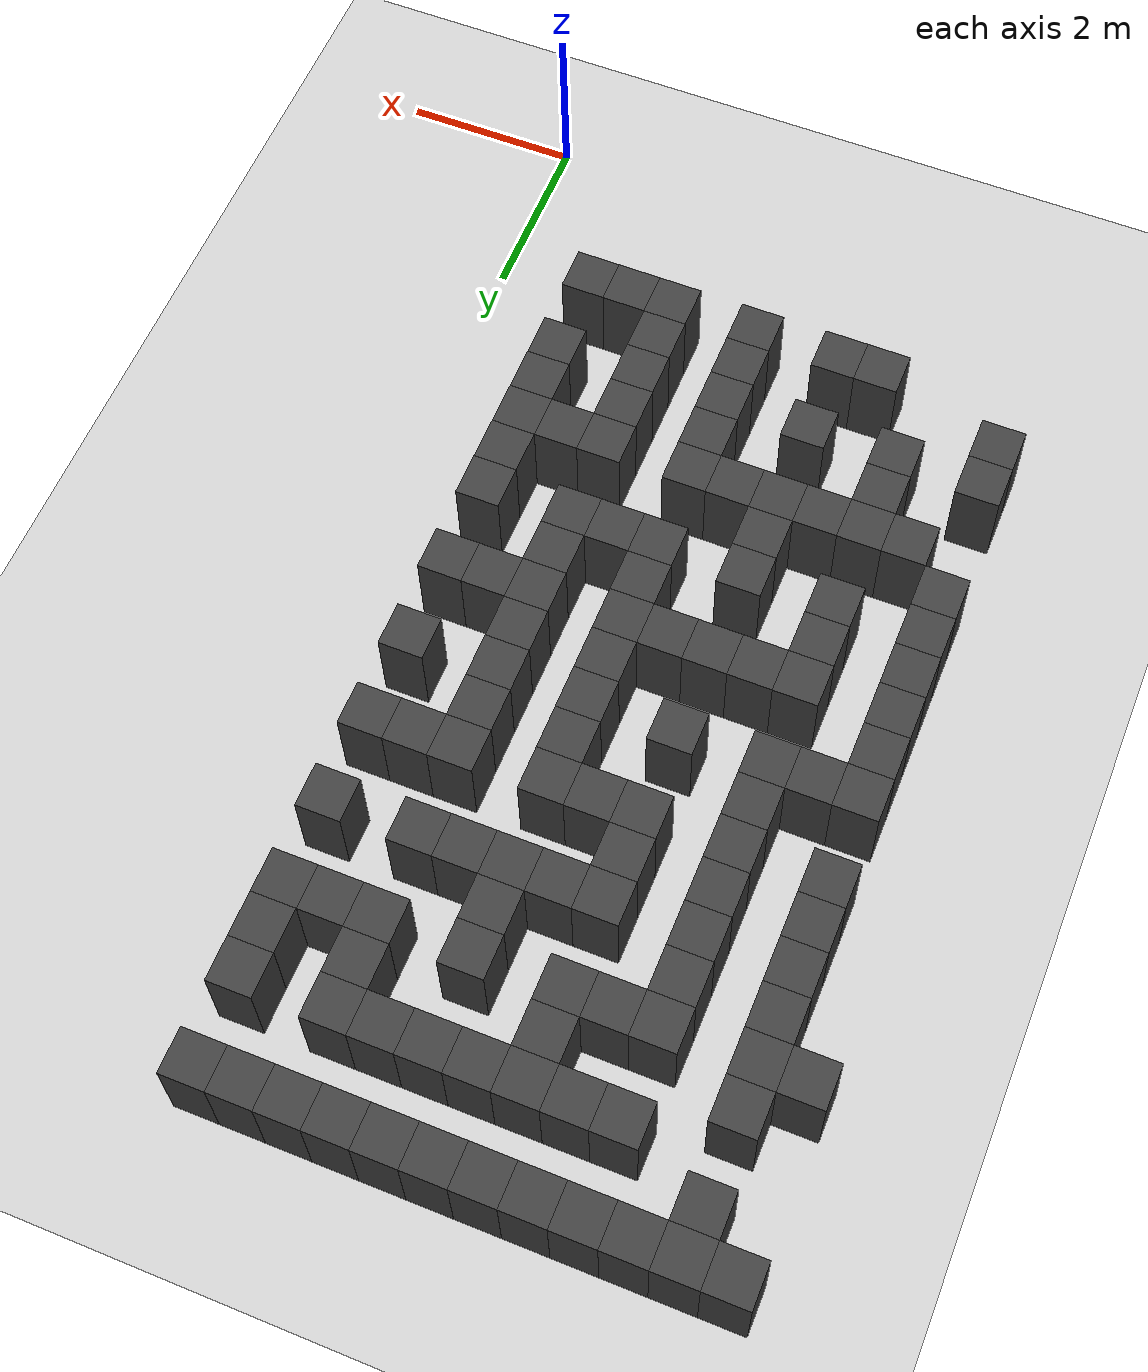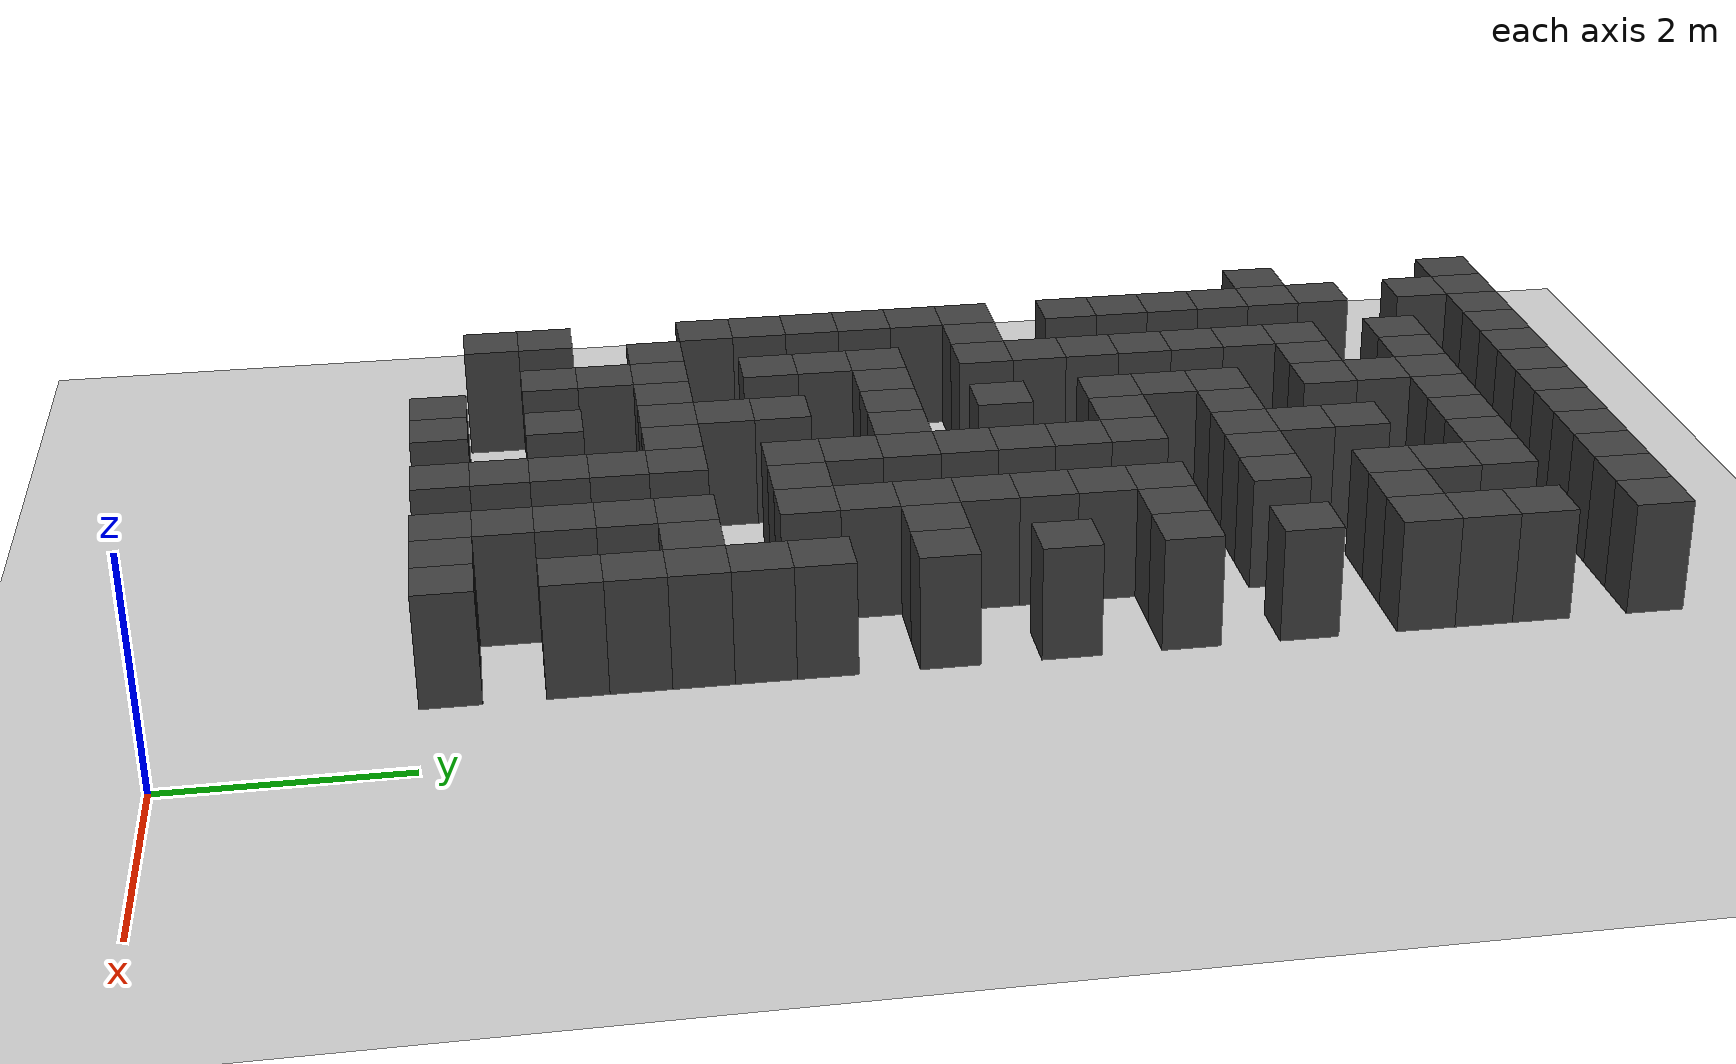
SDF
<sdf version="1.7">
 <world name="map_19217">
  <model name="ground_plane">
   <static>true</static>
   <link name="link">
    <collision name="collision">
     <geometry><plane><normal>0 0 1</normal><size>200 200</size></plane></geometry>
    </collision>
    <visual name="visual">
     <geometry><plane><normal>0 0 1</normal><size>200 200</size></plane></geometry>
     <material><ambient>0.8 0.8 0.8 1</ambient><diffuse>0.8 0.8 0.8 1</diffuse></material>
    </visual>
   </link>
  </model>
  <model name="maze_environment">
   <static>true</static>
   <link name="wall_11">
    <pose>-6.750 12.250 0.500 0 0 0</pose>
    <collision name="col"><geometry><box><size>0.5 0.5 1.0</size></box></geometry></collision>
    <visual name="vis">
     <geometry><box><size>0.5 0.5 1.0</size></box></geometry>
     <material><ambient>0.15 0.15 0.15 1</ambient><diffuse>0.25 0.25 0.25 1</diffuse></material>
    </visual>
   </link>
   <link name="wall_12">
    <pose>-6.250 12.250 0.500 0 0 0</pose>
    <collision name="col"><geometry><box><size>0.5 0.5 1.0</size></box></geometry></collision>
    <visual name="vis">
     <geometry><box><size>0.5 0.5 1.0</size></box></geometry>
     <material><ambient>0.15 0.15 0.15 1</ambient><diffuse>0.25 0.25 0.25 1</diffuse></material>
    </visual>
   </link>
   <link name="wall_13">
    <pose>-5.750 12.250 0.500 0 0 0</pose>
    <collision name="col"><geometry><box><size>0.5 0.5 1.0</size></box></geometry></collision>
    <visual name="vis">
     <geometry><box><size>0.5 0.5 1.0</size></box></geometry>
     <material><ambient>0.15 0.15 0.15 1</ambient><diffuse>0.25 0.25 0.25 1</diffuse></material>
    </visual>
   </link>
   <link name="wall_14">
    <pose>-5.250 12.250 0.500 0 0 0</pose>
    <collision name="col"><geometry><box><size>0.5 0.5 1.0</size></box></geometry></collision>
    <visual name="vis">
     <geometry><box><size>0.5 0.5 1.0</size></box></geometry>
     <material><ambient>0.15 0.15 0.15 1</ambient><diffuse>0.25 0.25 0.25 1</diffuse></material>
    </visual>
   </link>
   <link name="wall_15">
    <pose>-4.750 12.250 0.500 0 0 0</pose>
    <collision name="col"><geometry><box><size>0.5 0.5 1.0</size></box></geometry></collision>
    <visual name="vis">
     <geometry><box><size>0.5 0.5 1.0</size></box></geometry>
     <material><ambient>0.15 0.15 0.15 1</ambient><diffuse>0.25 0.25 0.25 1</diffuse></material>
    </visual>
   </link>
   <link name="wall_16">
    <pose>-4.250 12.250 0.500 0 0 0</pose>
    <collision name="col"><geometry><box><size>0.5 0.5 1.0</size></box></geometry></collision>
    <visual name="vis">
     <geometry><box><size>0.5 0.5 1.0</size></box></geometry>
     <material><ambient>0.15 0.15 0.15 1</ambient><diffuse>0.25 0.25 0.25 1</diffuse></material>
    </visual>
   </link>
   <link name="wall_17">
    <pose>-3.750 12.250 0.500 0 0 0</pose>
    <collision name="col"><geometry><box><size>0.5 0.5 1.0</size></box></geometry></collision>
    <visual name="vis">
     <geometry><box><size>0.5 0.5 1.0</size></box></geometry>
     <material><ambient>0.15 0.15 0.15 1</ambient><diffuse>0.25 0.25 0.25 1</diffuse></material>
    </visual>
   </link>
   <link name="wall_18">
    <pose>-3.250 12.250 0.500 0 0 0</pose>
    <collision name="col"><geometry><box><size>0.5 0.5 1.0</size></box></geometry></collision>
    <visual name="vis">
     <geometry><box><size>0.5 0.5 1.0</size></box></geometry>
     <material><ambient>0.15 0.15 0.15 1</ambient><diffuse>0.25 0.25 0.25 1</diffuse></material>
    </visual>
   </link>
   <link name="wall_19">
    <pose>-2.750 12.250 0.500 0 0 0</pose>
    <collision name="col"><geometry><box><size>0.5 0.5 1.0</size></box></geometry></collision>
    <visual name="vis">
     <geometry><box><size>0.5 0.5 1.0</size></box></geometry>
     <material><ambient>0.15 0.15 0.15 1</ambient><diffuse>0.25 0.25 0.25 1</diffuse></material>
    </visual>
   </link>
   <link name="wall_20">
    <pose>-2.250 12.250 0.500 0 0 0</pose>
    <collision name="col"><geometry><box><size>0.5 0.5 1.0</size></box></geometry></collision>
    <visual name="vis">
     <geometry><box><size>0.5 0.5 1.0</size></box></geometry>
     <material><ambient>0.15 0.15 0.15 1</ambient><diffuse>0.25 0.25 0.25 1</diffuse></material>
    </visual>
   </link>
   <link name="wall_21">
    <pose>-1.750 12.250 0.500 0 0 0</pose>
    <collision name="col"><geometry><box><size>0.5 0.5 1.0</size></box></geometry></collision>
    <visual name="vis">
     <geometry><box><size>0.5 0.5 1.0</size></box></geometry>
     <material><ambient>0.15 0.15 0.15 1</ambient><diffuse>0.25 0.25 0.25 1</diffuse></material>
    </visual>
   </link>
   <link name="wall_22">
    <pose>-1.250 12.250 0.500 0 0 0</pose>
    <collision name="col"><geometry><box><size>0.5 0.5 1.0</size></box></geometry></collision>
    <visual name="vis">
     <geometry><box><size>0.5 0.5 1.0</size></box></geometry>
     <material><ambient>0.15 0.15 0.15 1</ambient><diffuse>0.25 0.25 0.25 1</diffuse></material>
    </visual>
   </link>
   <link name="wall_53">
    <pose>-6.250 11.750 0.500 0 0 0</pose>
    <collision name="col"><geometry><box><size>0.5 0.5 1.0</size></box></geometry></collision>
    <visual name="vis">
     <geometry><box><size>0.5 0.5 1.0</size></box></geometry>
     <material><ambient>0.15 0.15 0.15 1</ambient><diffuse>0.25 0.25 0.25 1</diffuse></material>
    </visual>
   </link>
   <link name="wall_66">
    <pose>-5.250 11.250 0.500 0 0 0</pose>
    <collision name="col"><geometry><box><size>0.5 0.5 1.0</size></box></geometry></collision>
    <visual name="vis">
     <geometry><box><size>0.5 0.5 1.0</size></box></geometry>
     <material><ambient>0.15 0.15 0.15 1</ambient><diffuse>0.25 0.25 0.25 1</diffuse></material>
    </visual>
   </link>
   <link name="wall_67">
    <pose>-4.750 11.250 0.500 0 0 0</pose>
    <collision name="col"><geometry><box><size>0.5 0.5 1.0</size></box></geometry></collision>
    <visual name="vis">
     <geometry><box><size>0.5 0.5 1.0</size></box></geometry>
     <material><ambient>0.15 0.15 0.15 1</ambient><diffuse>0.25 0.25 0.25 1</diffuse></material>
    </visual>
   </link>
   <link name="wall_68">
    <pose>-4.250 11.250 0.500 0 0 0</pose>
    <collision name="col"><geometry><box><size>0.5 0.5 1.0</size></box></geometry></collision>
    <visual name="vis">
     <geometry><box><size>0.5 0.5 1.0</size></box></geometry>
     <material><ambient>0.15 0.15 0.15 1</ambient><diffuse>0.25 0.25 0.25 1</diffuse></material>
    </visual>
   </link>
   <link name="wall_69">
    <pose>-3.750 11.250 0.500 0 0 0</pose>
    <collision name="col"><geometry><box><size>0.5 0.5 1.0</size></box></geometry></collision>
    <visual name="vis">
     <geometry><box><size>0.5 0.5 1.0</size></box></geometry>
     <material><ambient>0.15 0.15 0.15 1</ambient><diffuse>0.25 0.25 0.25 1</diffuse></material>
    </visual>
   </link>
   <link name="wall_70">
    <pose>-3.250 11.250 0.500 0 0 0</pose>
    <collision name="col"><geometry><box><size>0.5 0.5 1.0</size></box></geometry></collision>
    <visual name="vis">
     <geometry><box><size>0.5 0.5 1.0</size></box></geometry>
     <material><ambient>0.15 0.15 0.15 1</ambient><diffuse>0.25 0.25 0.25 1</diffuse></material>
    </visual>
   </link>
   <link name="wall_71">
    <pose>-2.750 11.250 0.500 0 0 0</pose>
    <collision name="col"><geometry><box><size>0.5 0.5 1.0</size></box></geometry></collision>
    <visual name="vis">
     <geometry><box><size>0.5 0.5 1.0</size></box></geometry>
     <material><ambient>0.15 0.15 0.15 1</ambient><diffuse>0.25 0.25 0.25 1</diffuse></material>
    </visual>
   </link>
   <link name="wall_72">
    <pose>-2.250 11.250 0.500 0 0 0</pose>
    <collision name="col"><geometry><box><size>0.5 0.5 1.0</size></box></geometry></collision>
    <visual name="vis">
     <geometry><box><size>0.5 0.5 1.0</size></box></geometry>
     <material><ambient>0.15 0.15 0.15 1</ambient><diffuse>0.25 0.25 0.25 1</diffuse></material>
    </visual>
   </link>
   <link name="wall_73">
    <pose>-1.250 11.250 0.500 0 0 0</pose>
    <collision name="col"><geometry><box><size>0.5 0.5 1.0</size></box></geometry></collision>
    <visual name="vis">
     <geometry><box><size>0.5 0.5 1.0</size></box></geometry>
     <material><ambient>0.15 0.15 0.15 1</ambient><diffuse>0.25 0.25 0.25 1</diffuse></material>
    </visual>
   </link>
   <link name="wall_96">
    <pose>-6.250 10.750 0.500 0 0 0</pose>
    <collision name="col"><geometry><box><size>0.5 0.5 1.0</size></box></geometry></collision>
    <visual name="vis">
     <geometry><box><size>0.5 0.5 1.0</size></box></geometry>
     <material><ambient>0.15 0.15 0.15 1</ambient><diffuse>0.25 0.25 0.25 1</diffuse></material>
    </visual>
   </link>
   <link name="wall_97">
    <pose>-4.250 10.750 0.500 0 0 0</pose>
    <collision name="col"><geometry><box><size>0.5 0.5 1.0</size></box></geometry></collision>
    <visual name="vis">
     <geometry><box><size>0.5 0.5 1.0</size></box></geometry>
     <material><ambient>0.15 0.15 0.15 1</ambient><diffuse>0.25 0.25 0.25 1</diffuse></material>
    </visual>
   </link>
   <link name="wall_98">
    <pose>-2.250 10.750 0.500 0 0 0</pose>
    <collision name="col"><geometry><box><size>0.5 0.5 1.0</size></box></geometry></collision>
    <visual name="vis">
     <geometry><box><size>0.5 0.5 1.0</size></box></geometry>
     <material><ambient>0.15 0.15 0.15 1</ambient><diffuse>0.25 0.25 0.25 1</diffuse></material>
    </visual>
   </link>
   <link name="wall_99">
    <pose>-1.250 10.750 0.500 0 0 0</pose>
    <collision name="col"><geometry><box><size>0.5 0.5 1.0</size></box></geometry></collision>
    <visual name="vis">
     <geometry><box><size>0.5 0.5 1.0</size></box></geometry>
     <material><ambient>0.15 0.15 0.15 1</ambient><diffuse>0.25 0.25 0.25 1</diffuse></material>
    </visual>
   </link>
   <link name="wall_116">
    <pose>-6.750 10.250 0.500 0 0 0</pose>
    <collision name="col"><geometry><box><size>0.5 0.5 1.0</size></box></geometry></collision>
    <visual name="vis">
     <geometry><box><size>0.5 0.5 1.0</size></box></geometry>
     <material><ambient>0.15 0.15 0.15 1</ambient><diffuse>0.25 0.25 0.25 1</diffuse></material>
    </visual>
   </link>
   <link name="wall_117">
    <pose>-6.250 10.250 0.500 0 0 0</pose>
    <collision name="col"><geometry><box><size>0.5 0.5 1.0</size></box></geometry></collision>
    <visual name="vis">
     <geometry><box><size>0.5 0.5 1.0</size></box></geometry>
     <material><ambient>0.15 0.15 0.15 1</ambient><diffuse>0.25 0.25 0.25 1</diffuse></material>
    </visual>
   </link>
   <link name="wall_118">
    <pose>-5.250 10.250 0.500 0 0 0</pose>
    <collision name="col"><geometry><box><size>0.5 0.5 1.0</size></box></geometry></collision>
    <visual name="vis">
     <geometry><box><size>0.5 0.5 1.0</size></box></geometry>
     <material><ambient>0.15 0.15 0.15 1</ambient><diffuse>0.25 0.25 0.25 1</diffuse></material>
    </visual>
   </link>
   <link name="wall_119">
    <pose>-4.750 10.250 0.500 0 0 0</pose>
    <collision name="col"><geometry><box><size>0.5 0.5 1.0</size></box></geometry></collision>
    <visual name="vis">
     <geometry><box><size>0.5 0.5 1.0</size></box></geometry>
     <material><ambient>0.15 0.15 0.15 1</ambient><diffuse>0.25 0.25 0.25 1</diffuse></material>
    </visual>
   </link>
   <link name="wall_120">
    <pose>-4.250 10.250 0.500 0 0 0</pose>
    <collision name="col"><geometry><box><size>0.5 0.5 1.0</size></box></geometry></collision>
    <visual name="vis">
     <geometry><box><size>0.5 0.5 1.0</size></box></geometry>
     <material><ambient>0.15 0.15 0.15 1</ambient><diffuse>0.25 0.25 0.25 1</diffuse></material>
    </visual>
   </link>
   <link name="wall_121">
    <pose>-3.250 10.250 0.500 0 0 0</pose>
    <collision name="col"><geometry><box><size>0.5 0.5 1.0</size></box></geometry></collision>
    <visual name="vis">
     <geometry><box><size>0.5 0.5 1.0</size></box></geometry>
     <material><ambient>0.15 0.15 0.15 1</ambient><diffuse>0.25 0.25 0.25 1</diffuse></material>
    </visual>
   </link>
   <link name="wall_122">
    <pose>-2.250 10.250 0.500 0 0 0</pose>
    <collision name="col"><geometry><box><size>0.5 0.5 1.0</size></box></geometry></collision>
    <visual name="vis">
     <geometry><box><size>0.5 0.5 1.0</size></box></geometry>
     <material><ambient>0.15 0.15 0.15 1</ambient><diffuse>0.25 0.25 0.25 1</diffuse></material>
    </visual>
   </link>
   <link name="wall_123">
    <pose>-1.750 10.250 0.500 0 0 0</pose>
    <collision name="col"><geometry><box><size>0.5 0.5 1.0</size></box></geometry></collision>
    <visual name="vis">
     <geometry><box><size>0.5 0.5 1.0</size></box></geometry>
     <material><ambient>0.15 0.15 0.15 1</ambient><diffuse>0.25 0.25 0.25 1</diffuse></material>
    </visual>
   </link>
   <link name="wall_124">
    <pose>-1.250 10.250 0.500 0 0 0</pose>
    <collision name="col"><geometry><box><size>0.5 0.5 1.0</size></box></geometry></collision>
    <visual name="vis">
     <geometry><box><size>0.5 0.5 1.0</size></box></geometry>
     <material><ambient>0.15 0.15 0.15 1</ambient><diffuse>0.25 0.25 0.25 1</diffuse></material>
    </visual>
   </link>
   <link name="wall_149">
    <pose>-6.250 9.750 0.500 0 0 0</pose>
    <collision name="col"><geometry><box><size>0.5 0.5 1.0</size></box></geometry></collision>
    <visual name="vis">
     <geometry><box><size>0.5 0.5 1.0</size></box></geometry>
     <material><ambient>0.15 0.15 0.15 1</ambient><diffuse>0.25 0.25 0.25 1</diffuse></material>
    </visual>
   </link>
   <link name="wall_150">
    <pose>-5.250 9.750 0.500 0 0 0</pose>
    <collision name="col"><geometry><box><size>0.5 0.5 1.0</size></box></geometry></collision>
    <visual name="vis">
     <geometry><box><size>0.5 0.5 1.0</size></box></geometry>
     <material><ambient>0.15 0.15 0.15 1</ambient><diffuse>0.25 0.25 0.25 1</diffuse></material>
    </visual>
   </link>
   <link name="wall_151">
    <pose>-3.250 9.750 0.500 0 0 0</pose>
    <collision name="col"><geometry><box><size>0.5 0.5 1.0</size></box></geometry></collision>
    <visual name="vis">
     <geometry><box><size>0.5 0.5 1.0</size></box></geometry>
     <material><ambient>0.15 0.15 0.15 1</ambient><diffuse>0.25 0.25 0.25 1</diffuse></material>
    </visual>
   </link>
   <link name="wall_168">
    <pose>-6.250 9.250 0.500 0 0 0</pose>
    <collision name="col"><geometry><box><size>0.5 0.5 1.0</size></box></geometry></collision>
    <visual name="vis">
     <geometry><box><size>0.5 0.5 1.0</size></box></geometry>
     <material><ambient>0.15 0.15 0.15 1</ambient><diffuse>0.25 0.25 0.25 1</diffuse></material>
    </visual>
   </link>
   <link name="wall_169">
    <pose>-5.250 9.250 0.500 0 0 0</pose>
    <collision name="col"><geometry><box><size>0.5 0.5 1.0</size></box></geometry></collision>
    <visual name="vis">
     <geometry><box><size>0.5 0.5 1.0</size></box></geometry>
     <material><ambient>0.15 0.15 0.15 1</ambient><diffuse>0.25 0.25 0.25 1</diffuse></material>
    </visual>
   </link>
   <link name="wall_170">
    <pose>-4.250 9.250 0.500 0 0 0</pose>
    <collision name="col"><geometry><box><size>0.5 0.5 1.0</size></box></geometry></collision>
    <visual name="vis">
     <geometry><box><size>0.5 0.5 1.0</size></box></geometry>
     <material><ambient>0.15 0.15 0.15 1</ambient><diffuse>0.25 0.25 0.25 1</diffuse></material>
    </visual>
   </link>
   <link name="wall_171">
    <pose>-3.750 9.250 0.500 0 0 0</pose>
    <collision name="col"><geometry><box><size>0.5 0.5 1.0</size></box></geometry></collision>
    <visual name="vis">
     <geometry><box><size>0.5 0.5 1.0</size></box></geometry>
     <material><ambient>0.15 0.15 0.15 1</ambient><diffuse>0.25 0.25 0.25 1</diffuse></material>
    </visual>
   </link>
   <link name="wall_172">
    <pose>-3.250 9.250 0.500 0 0 0</pose>
    <collision name="col"><geometry><box><size>0.5 0.5 1.0</size></box></geometry></collision>
    <visual name="vis">
     <geometry><box><size>0.5 0.5 1.0</size></box></geometry>
     <material><ambient>0.15 0.15 0.15 1</ambient><diffuse>0.25 0.25 0.25 1</diffuse></material>
    </visual>
   </link>
   <link name="wall_173">
    <pose>-2.750 9.250 0.500 0 0 0</pose>
    <collision name="col"><geometry><box><size>0.5 0.5 1.0</size></box></geometry></collision>
    <visual name="vis">
     <geometry><box><size>0.5 0.5 1.0</size></box></geometry>
     <material><ambient>0.15 0.15 0.15 1</ambient><diffuse>0.25 0.25 0.25 1</diffuse></material>
    </visual>
   </link>
   <link name="wall_174">
    <pose>-2.250 9.250 0.500 0 0 0</pose>
    <collision name="col"><geometry><box><size>0.5 0.5 1.0</size></box></geometry></collision>
    <visual name="vis">
     <geometry><box><size>0.5 0.5 1.0</size></box></geometry>
     <material><ambient>0.15 0.15 0.15 1</ambient><diffuse>0.25 0.25 0.25 1</diffuse></material>
    </visual>
   </link>
   <link name="wall_175">
    <pose>-1.250 9.250 0.500 0 0 0</pose>
    <collision name="col"><geometry><box><size>0.5 0.5 1.0</size></box></geometry></collision>
    <visual name="vis">
     <geometry><box><size>0.5 0.5 1.0</size></box></geometry>
     <material><ambient>0.15 0.15 0.15 1</ambient><diffuse>0.25 0.25 0.25 1</diffuse></material>
    </visual>
   </link>
   <link name="wall_203">
    <pose>-6.250 8.750 0.500 0 0 0</pose>
    <collision name="col"><geometry><box><size>0.5 0.5 1.0</size></box></geometry></collision>
    <visual name="vis">
     <geometry><box><size>0.5 0.5 1.0</size></box></geometry>
     <material><ambient>0.15 0.15 0.15 1</ambient><diffuse>0.25 0.25 0.25 1</diffuse></material>
    </visual>
   </link>
   <link name="wall_204">
    <pose>-5.250 8.750 0.500 0 0 0</pose>
    <collision name="col"><geometry><box><size>0.5 0.5 1.0</size></box></geometry></collision>
    <visual name="vis">
     <geometry><box><size>0.5 0.5 1.0</size></box></geometry>
     <material><ambient>0.15 0.15 0.15 1</ambient><diffuse>0.25 0.25 0.25 1</diffuse></material>
    </visual>
   </link>
   <link name="wall_205">
    <pose>-4.250 8.750 0.500 0 0 0</pose>
    <collision name="col"><geometry><box><size>0.5 0.5 1.0</size></box></geometry></collision>
    <visual name="vis">
     <geometry><box><size>0.5 0.5 1.0</size></box></geometry>
     <material><ambient>0.15 0.15 0.15 1</ambient><diffuse>0.25 0.25 0.25 1</diffuse></material>
    </visual>
   </link>
   <link name="wall_220">
    <pose>-6.250 8.250 0.500 0 0 0</pose>
    <collision name="col"><geometry><box><size>0.5 0.5 1.0</size></box></geometry></collision>
    <visual name="vis">
     <geometry><box><size>0.5 0.5 1.0</size></box></geometry>
     <material><ambient>0.15 0.15 0.15 1</ambient><diffuse>0.25 0.25 0.25 1</diffuse></material>
    </visual>
   </link>
   <link name="wall_221">
    <pose>-5.250 8.250 0.500 0 0 0</pose>
    <collision name="col"><geometry><box><size>0.5 0.5 1.0</size></box></geometry></collision>
    <visual name="vis">
     <geometry><box><size>0.5 0.5 1.0</size></box></geometry>
     <material><ambient>0.15 0.15 0.15 1</ambient><diffuse>0.25 0.25 0.25 1</diffuse></material>
    </visual>
   </link>
   <link name="wall_222">
    <pose>-4.250 8.250 0.500 0 0 0</pose>
    <collision name="col"><geometry><box><size>0.5 0.5 1.0</size></box></geometry></collision>
    <visual name="vis">
     <geometry><box><size>0.5 0.5 1.0</size></box></geometry>
     <material><ambient>0.15 0.15 0.15 1</ambient><diffuse>0.25 0.25 0.25 1</diffuse></material>
    </visual>
   </link>
   <link name="wall_223">
    <pose>-3.750 8.250 0.500 0 0 0</pose>
    <collision name="col"><geometry><box><size>0.5 0.5 1.0</size></box></geometry></collision>
    <visual name="vis">
     <geometry><box><size>0.5 0.5 1.0</size></box></geometry>
     <material><ambient>0.15 0.15 0.15 1</ambient><diffuse>0.25 0.25 0.25 1</diffuse></material>
    </visual>
   </link>
   <link name="wall_224">
    <pose>-3.250 8.250 0.500 0 0 0</pose>
    <collision name="col"><geometry><box><size>0.5 0.5 1.0</size></box></geometry></collision>
    <visual name="vis">
     <geometry><box><size>0.5 0.5 1.0</size></box></geometry>
     <material><ambient>0.15 0.15 0.15 1</ambient><diffuse>0.25 0.25 0.25 1</diffuse></material>
    </visual>
   </link>
   <link name="wall_225">
    <pose>-2.250 8.250 0.500 0 0 0</pose>
    <collision name="col"><geometry><box><size>0.5 0.5 1.0</size></box></geometry></collision>
    <visual name="vis">
     <geometry><box><size>0.5 0.5 1.0</size></box></geometry>
     <material><ambient>0.15 0.15 0.15 1</ambient><diffuse>0.25 0.25 0.25 1</diffuse></material>
    </visual>
   </link>
   <link name="wall_226">
    <pose>-1.750 8.250 0.500 0 0 0</pose>
    <collision name="col"><geometry><box><size>0.5 0.5 1.0</size></box></geometry></collision>
    <visual name="vis">
     <geometry><box><size>0.5 0.5 1.0</size></box></geometry>
     <material><ambient>0.15 0.15 0.15 1</ambient><diffuse>0.25 0.25 0.25 1</diffuse></material>
    </visual>
   </link>
   <link name="wall_227">
    <pose>-1.250 8.250 0.500 0 0 0</pose>
    <collision name="col"><geometry><box><size>0.5 0.5 1.0</size></box></geometry></collision>
    <visual name="vis">
     <geometry><box><size>0.5 0.5 1.0</size></box></geometry>
     <material><ambient>0.15 0.15 0.15 1</ambient><diffuse>0.25 0.25 0.25 1</diffuse></material>
    </visual>
   </link>
   <link name="wall_251">
    <pose>-5.250 7.750 0.500 0 0 0</pose>
    <collision name="col"><geometry><box><size>0.5 0.5 1.0</size></box></geometry></collision>
    <visual name="vis">
     <geometry><box><size>0.5 0.5 1.0</size></box></geometry>
     <material><ambient>0.15 0.15 0.15 1</ambient><diffuse>0.25 0.25 0.25 1</diffuse></material>
    </visual>
   </link>
   <link name="wall_252">
    <pose>-3.250 7.750 0.500 0 0 0</pose>
    <collision name="col"><geometry><box><size>0.5 0.5 1.0</size></box></geometry></collision>
    <visual name="vis">
     <geometry><box><size>0.5 0.5 1.0</size></box></geometry>
     <material><ambient>0.15 0.15 0.15 1</ambient><diffuse>0.25 0.25 0.25 1</diffuse></material>
    </visual>
   </link>
   <link name="wall_253">
    <pose>-2.250 7.750 0.500 0 0 0</pose>
    <collision name="col"><geometry><box><size>0.5 0.5 1.0</size></box></geometry></collision>
    <visual name="vis">
     <geometry><box><size>0.5 0.5 1.0</size></box></geometry>
     <material><ambient>0.15 0.15 0.15 1</ambient><diffuse>0.25 0.25 0.25 1</diffuse></material>
    </visual>
   </link>
   <link name="wall_270">
    <pose>-6.250 7.250 0.500 0 0 0</pose>
    <collision name="col"><geometry><box><size>0.5 0.5 1.0</size></box></geometry></collision>
    <visual name="vis">
     <geometry><box><size>0.5 0.5 1.0</size></box></geometry>
     <material><ambient>0.15 0.15 0.15 1</ambient><diffuse>0.25 0.25 0.25 1</diffuse></material>
    </visual>
   </link>
   <link name="wall_271">
    <pose>-5.750 7.250 0.500 0 0 0</pose>
    <collision name="col"><geometry><box><size>0.5 0.5 1.0</size></box></geometry></collision>
    <visual name="vis">
     <geometry><box><size>0.5 0.5 1.0</size></box></geometry>
     <material><ambient>0.15 0.15 0.15 1</ambient><diffuse>0.25 0.25 0.25 1</diffuse></material>
    </visual>
   </link>
   <link name="wall_272">
    <pose>-5.250 7.250 0.500 0 0 0</pose>
    <collision name="col"><geometry><box><size>0.5 0.5 1.0</size></box></geometry></collision>
    <visual name="vis">
     <geometry><box><size>0.5 0.5 1.0</size></box></geometry>
     <material><ambient>0.15 0.15 0.15 1</ambient><diffuse>0.25 0.25 0.25 1</diffuse></material>
    </visual>
   </link>
   <link name="wall_273">
    <pose>-4.250 7.250 0.500 0 0 0</pose>
    <collision name="col"><geometry><box><size>0.5 0.5 1.0</size></box></geometry></collision>
    <visual name="vis">
     <geometry><box><size>0.5 0.5 1.0</size></box></geometry>
     <material><ambient>0.15 0.15 0.15 1</ambient><diffuse>0.25 0.25 0.25 1</diffuse></material>
    </visual>
   </link>
   <link name="wall_274">
    <pose>-3.250 7.250 0.500 0 0 0</pose>
    <collision name="col"><geometry><box><size>0.5 0.5 1.0</size></box></geometry></collision>
    <visual name="vis">
     <geometry><box><size>0.5 0.5 1.0</size></box></geometry>
     <material><ambient>0.15 0.15 0.15 1</ambient><diffuse>0.25 0.25 0.25 1</diffuse></material>
    </visual>
   </link>
   <link name="wall_275">
    <pose>-2.250 7.250 0.500 0 0 0</pose>
    <collision name="col"><geometry><box><size>0.5 0.5 1.0</size></box></geometry></collision>
    <visual name="vis">
     <geometry><box><size>0.5 0.5 1.0</size></box></geometry>
     <material><ambient>0.15 0.15 0.15 1</ambient><diffuse>0.25 0.25 0.25 1</diffuse></material>
    </visual>
   </link>
   <link name="wall_276">
    <pose>-1.250 7.250 0.500 0 0 0</pose>
    <collision name="col"><geometry><box><size>0.5 0.5 1.0</size></box></geometry></collision>
    <visual name="vis">
     <geometry><box><size>0.5 0.5 1.0</size></box></geometry>
     <material><ambient>0.15 0.15 0.15 1</ambient><diffuse>0.25 0.25 0.25 1</diffuse></material>
    </visual>
   </link>
   <link name="wall_301">
    <pose>-6.250 6.750 0.500 0 0 0</pose>
    <collision name="col"><geometry><box><size>0.5 0.5 1.0</size></box></geometry></collision>
    <visual name="vis">
     <geometry><box><size>0.5 0.5 1.0</size></box></geometry>
     <material><ambient>0.15 0.15 0.15 1</ambient><diffuse>0.25 0.25 0.25 1</diffuse></material>
    </visual>
   </link>
   <link name="wall_302">
    <pose>-3.250 6.750 0.500 0 0 0</pose>
    <collision name="col"><geometry><box><size>0.5 0.5 1.0</size></box></geometry></collision>
    <visual name="vis">
     <geometry><box><size>0.5 0.5 1.0</size></box></geometry>
     <material><ambient>0.15 0.15 0.15 1</ambient><diffuse>0.25 0.25 0.25 1</diffuse></material>
    </visual>
   </link>
   <link name="wall_303">
    <pose>-2.250 6.750 0.500 0 0 0</pose>
    <collision name="col"><geometry><box><size>0.5 0.5 1.0</size></box></geometry></collision>
    <visual name="vis">
     <geometry><box><size>0.5 0.5 1.0</size></box></geometry>
     <material><ambient>0.15 0.15 0.15 1</ambient><diffuse>0.25 0.25 0.25 1</diffuse></material>
    </visual>
   </link>
   <link name="wall_320">
    <pose>-6.250 6.250 0.500 0 0 0</pose>
    <collision name="col"><geometry><box><size>0.5 0.5 1.0</size></box></geometry></collision>
    <visual name="vis">
     <geometry><box><size>0.5 0.5 1.0</size></box></geometry>
     <material><ambient>0.15 0.15 0.15 1</ambient><diffuse>0.25 0.25 0.25 1</diffuse></material>
    </visual>
   </link>
   <link name="wall_321">
    <pose>-5.250 6.250 0.500 0 0 0</pose>
    <collision name="col"><geometry><box><size>0.5 0.5 1.0</size></box></geometry></collision>
    <visual name="vis">
     <geometry><box><size>0.5 0.5 1.0</size></box></geometry>
     <material><ambient>0.15 0.15 0.15 1</ambient><diffuse>0.25 0.25 0.25 1</diffuse></material>
    </visual>
   </link>
   <link name="wall_322">
    <pose>-4.750 6.250 0.500 0 0 0</pose>
    <collision name="col"><geometry><box><size>0.5 0.5 1.0</size></box></geometry></collision>
    <visual name="vis">
     <geometry><box><size>0.5 0.5 1.0</size></box></geometry>
     <material><ambient>0.15 0.15 0.15 1</ambient><diffuse>0.25 0.25 0.25 1</diffuse></material>
    </visual>
   </link>
   <link name="wall_323">
    <pose>-4.250 6.250 0.500 0 0 0</pose>
    <collision name="col"><geometry><box><size>0.5 0.5 1.0</size></box></geometry></collision>
    <visual name="vis">
     <geometry><box><size>0.5 0.5 1.0</size></box></geometry>
     <material><ambient>0.15 0.15 0.15 1</ambient><diffuse>0.25 0.25 0.25 1</diffuse></material>
    </visual>
   </link>
   <link name="wall_324">
    <pose>-3.750 6.250 0.500 0 0 0</pose>
    <collision name="col"><geometry><box><size>0.5 0.5 1.0</size></box></geometry></collision>
    <visual name="vis">
     <geometry><box><size>0.5 0.5 1.0</size></box></geometry>
     <material><ambient>0.15 0.15 0.15 1</ambient><diffuse>0.25 0.25 0.25 1</diffuse></material>
    </visual>
   </link>
   <link name="wall_325">
    <pose>-3.250 6.250 0.500 0 0 0</pose>
    <collision name="col"><geometry><box><size>0.5 0.5 1.0</size></box></geometry></collision>
    <visual name="vis">
     <geometry><box><size>0.5 0.5 1.0</size></box></geometry>
     <material><ambient>0.15 0.15 0.15 1</ambient><diffuse>0.25 0.25 0.25 1</diffuse></material>
    </visual>
   </link>
   <link name="wall_326">
    <pose>-2.250 6.250 0.500 0 0 0</pose>
    <collision name="col"><geometry><box><size>0.5 0.5 1.0</size></box></geometry></collision>
    <visual name="vis">
     <geometry><box><size>0.5 0.5 1.0</size></box></geometry>
     <material><ambient>0.15 0.15 0.15 1</ambient><diffuse>0.25 0.25 0.25 1</diffuse></material>
    </visual>
   </link>
   <link name="wall_327">
    <pose>-1.750 6.250 0.500 0 0 0</pose>
    <collision name="col"><geometry><box><size>0.5 0.5 1.0</size></box></geometry></collision>
    <visual name="vis">
     <geometry><box><size>0.5 0.5 1.0</size></box></geometry>
     <material><ambient>0.15 0.15 0.15 1</ambient><diffuse>0.25 0.25 0.25 1</diffuse></material>
    </visual>
   </link>
   <link name="wall_328">
    <pose>-1.250 6.250 0.500 0 0 0</pose>
    <collision name="col"><geometry><box><size>0.5 0.5 1.0</size></box></geometry></collision>
    <visual name="vis">
     <geometry><box><size>0.5 0.5 1.0</size></box></geometry>
     <material><ambient>0.15 0.15 0.15 1</ambient><diffuse>0.25 0.25 0.25 1</diffuse></material>
    </visual>
   </link>
   <link name="wall_353">
    <pose>-6.250 5.750 0.500 0 0 0</pose>
    <collision name="col"><geometry><box><size>0.5 0.5 1.0</size></box></geometry></collision>
    <visual name="vis">
     <geometry><box><size>0.5 0.5 1.0</size></box></geometry>
     <material><ambient>0.15 0.15 0.15 1</ambient><diffuse>0.25 0.25 0.25 1</diffuse></material>
    </visual>
   </link>
   <link name="wall_354">
    <pose>-5.250 5.750 0.500 0 0 0</pose>
    <collision name="col"><geometry><box><size>0.5 0.5 1.0</size></box></geometry></collision>
    <visual name="vis">
     <geometry><box><size>0.5 0.5 1.0</size></box></geometry>
     <material><ambient>0.15 0.15 0.15 1</ambient><diffuse>0.25 0.25 0.25 1</diffuse></material>
    </visual>
   </link>
   <link name="wall_355">
    <pose>-3.250 5.750 0.500 0 0 0</pose>
    <collision name="col"><geometry><box><size>0.5 0.5 1.0</size></box></geometry></collision>
    <visual name="vis">
     <geometry><box><size>0.5 0.5 1.0</size></box></geometry>
     <material><ambient>0.15 0.15 0.15 1</ambient><diffuse>0.25 0.25 0.25 1</diffuse></material>
    </visual>
   </link>
   <link name="wall_356">
    <pose>-2.250 5.750 0.500 0 0 0</pose>
    <collision name="col"><geometry><box><size>0.5 0.5 1.0</size></box></geometry></collision>
    <visual name="vis">
     <geometry><box><size>0.5 0.5 1.0</size></box></geometry>
     <material><ambient>0.15 0.15 0.15 1</ambient><diffuse>0.25 0.25 0.25 1</diffuse></material>
    </visual>
   </link>
   <link name="wall_372">
    <pose>-6.250 5.250 0.500 0 0 0</pose>
    <collision name="col"><geometry><box><size>0.5 0.5 1.0</size></box></geometry></collision>
    <visual name="vis">
     <geometry><box><size>0.5 0.5 1.0</size></box></geometry>
     <material><ambient>0.15 0.15 0.15 1</ambient><diffuse>0.25 0.25 0.25 1</diffuse></material>
    </visual>
   </link>
   <link name="wall_373">
    <pose>-5.250 5.250 0.500 0 0 0</pose>
    <collision name="col"><geometry><box><size>0.5 0.5 1.0</size></box></geometry></collision>
    <visual name="vis">
     <geometry><box><size>0.5 0.5 1.0</size></box></geometry>
     <material><ambient>0.15 0.15 0.15 1</ambient><diffuse>0.25 0.25 0.25 1</diffuse></material>
    </visual>
   </link>
   <link name="wall_374">
    <pose>-4.250 5.250 0.500 0 0 0</pose>
    <collision name="col"><geometry><box><size>0.5 0.5 1.0</size></box></geometry></collision>
    <visual name="vis">
     <geometry><box><size>0.5 0.5 1.0</size></box></geometry>
     <material><ambient>0.15 0.15 0.15 1</ambient><diffuse>0.25 0.25 0.25 1</diffuse></material>
    </visual>
   </link>
   <link name="wall_375">
    <pose>-3.250 5.250 0.500 0 0 0</pose>
    <collision name="col"><geometry><box><size>0.5 0.5 1.0</size></box></geometry></collision>
    <visual name="vis">
     <geometry><box><size>0.5 0.5 1.0</size></box></geometry>
     <material><ambient>0.15 0.15 0.15 1</ambient><diffuse>0.25 0.25 0.25 1</diffuse></material>
    </visual>
   </link>
   <link name="wall_376">
    <pose>-2.750 5.250 0.500 0 0 0</pose>
    <collision name="col"><geometry><box><size>0.5 0.5 1.0</size></box></geometry></collision>
    <visual name="vis">
     <geometry><box><size>0.5 0.5 1.0</size></box></geometry>
     <material><ambient>0.15 0.15 0.15 1</ambient><diffuse>0.25 0.25 0.25 1</diffuse></material>
    </visual>
   </link>
   <link name="wall_377">
    <pose>-2.250 5.250 0.500 0 0 0</pose>
    <collision name="col"><geometry><box><size>0.5 0.5 1.0</size></box></geometry></collision>
    <visual name="vis">
     <geometry><box><size>0.5 0.5 1.0</size></box></geometry>
     <material><ambient>0.15 0.15 0.15 1</ambient><diffuse>0.25 0.25 0.25 1</diffuse></material>
    </visual>
   </link>
   <link name="wall_378">
    <pose>-1.250 5.250 0.500 0 0 0</pose>
    <collision name="col"><geometry><box><size>0.5 0.5 1.0</size></box></geometry></collision>
    <visual name="vis">
     <geometry><box><size>0.5 0.5 1.0</size></box></geometry>
     <material><ambient>0.15 0.15 0.15 1</ambient><diffuse>0.25 0.25 0.25 1</diffuse></material>
    </visual>
   </link>
   <link name="wall_406">
    <pose>-6.250 4.750 0.500 0 0 0</pose>
    <collision name="col"><geometry><box><size>0.5 0.5 1.0</size></box></geometry></collision>
    <visual name="vis">
     <geometry><box><size>0.5 0.5 1.0</size></box></geometry>
     <material><ambient>0.15 0.15 0.15 1</ambient><diffuse>0.25 0.25 0.25 1</diffuse></material>
    </visual>
   </link>
   <link name="wall_407">
    <pose>-4.250 4.750 0.500 0 0 0</pose>
    <collision name="col"><geometry><box><size>0.5 0.5 1.0</size></box></geometry></collision>
    <visual name="vis">
     <geometry><box><size>0.5 0.5 1.0</size></box></geometry>
     <material><ambient>0.15 0.15 0.15 1</ambient><diffuse>0.25 0.25 0.25 1</diffuse></material>
    </visual>
   </link>
   <link name="wall_408">
    <pose>-1.250 4.750 0.500 0 0 0</pose>
    <collision name="col"><geometry><box><size>0.5 0.5 1.0</size></box></geometry></collision>
    <visual name="vis">
     <geometry><box><size>0.5 0.5 1.0</size></box></geometry>
     <material><ambient>0.15 0.15 0.15 1</ambient><diffuse>0.25 0.25 0.25 1</diffuse></material>
    </visual>
   </link>
   <link name="wall_421">
    <pose>-5.750 4.250 0.500 0 0 0</pose>
    <collision name="col"><geometry><box><size>0.5 0.5 1.0</size></box></geometry></collision>
    <visual name="vis">
     <geometry><box><size>0.5 0.5 1.0</size></box></geometry>
     <material><ambient>0.15 0.15 0.15 1</ambient><diffuse>0.25 0.25 0.25 1</diffuse></material>
    </visual>
   </link>
   <link name="wall_422">
    <pose>-5.250 4.250 0.500 0 0 0</pose>
    <collision name="col"><geometry><box><size>0.5 0.5 1.0</size></box></geometry></collision>
    <visual name="vis">
     <geometry><box><size>0.5 0.5 1.0</size></box></geometry>
     <material><ambient>0.15 0.15 0.15 1</ambient><diffuse>0.25 0.25 0.25 1</diffuse></material>
    </visual>
   </link>
   <link name="wall_423">
    <pose>-4.750 4.250 0.500 0 0 0</pose>
    <collision name="col"><geometry><box><size>0.5 0.5 1.0</size></box></geometry></collision>
    <visual name="vis">
     <geometry><box><size>0.5 0.5 1.0</size></box></geometry>
     <material><ambient>0.15 0.15 0.15 1</ambient><diffuse>0.25 0.25 0.25 1</diffuse></material>
    </visual>
   </link>
   <link name="wall_424">
    <pose>-4.250 4.250 0.500 0 0 0</pose>
    <collision name="col"><geometry><box><size>0.5 0.5 1.0</size></box></geometry></collision>
    <visual name="vis">
     <geometry><box><size>0.5 0.5 1.0</size></box></geometry>
     <material><ambient>0.15 0.15 0.15 1</ambient><diffuse>0.25 0.25 0.25 1</diffuse></material>
    </visual>
   </link>
   <link name="wall_425">
    <pose>-3.750 4.250 0.500 0 0 0</pose>
    <collision name="col"><geometry><box><size>0.5 0.5 1.0</size></box></geometry></collision>
    <visual name="vis">
     <geometry><box><size>0.5 0.5 1.0</size></box></geometry>
     <material><ambient>0.15 0.15 0.15 1</ambient><diffuse>0.25 0.25 0.25 1</diffuse></material>
    </visual>
   </link>
   <link name="wall_426">
    <pose>-3.250 4.250 0.500 0 0 0</pose>
    <collision name="col"><geometry><box><size>0.5 0.5 1.0</size></box></geometry></collision>
    <visual name="vis">
     <geometry><box><size>0.5 0.5 1.0</size></box></geometry>
     <material><ambient>0.15 0.15 0.15 1</ambient><diffuse>0.25 0.25 0.25 1</diffuse></material>
    </visual>
   </link>
   <link name="wall_427">
    <pose>-2.250 4.250 0.500 0 0 0</pose>
    <collision name="col"><geometry><box><size>0.5 0.5 1.0</size></box></geometry></collision>
    <visual name="vis">
     <geometry><box><size>0.5 0.5 1.0</size></box></geometry>
     <material><ambient>0.15 0.15 0.15 1</ambient><diffuse>0.25 0.25 0.25 1</diffuse></material>
    </visual>
   </link>
   <link name="wall_428">
    <pose>-1.750 4.250 0.500 0 0 0</pose>
    <collision name="col"><geometry><box><size>0.5 0.5 1.0</size></box></geometry></collision>
    <visual name="vis">
     <geometry><box><size>0.5 0.5 1.0</size></box></geometry>
     <material><ambient>0.15 0.15 0.15 1</ambient><diffuse>0.25 0.25 0.25 1</diffuse></material>
    </visual>
   </link>
   <link name="wall_429">
    <pose>-1.250 4.250 0.500 0 0 0</pose>
    <collision name="col"><geometry><box><size>0.5 0.5 1.0</size></box></geometry></collision>
    <visual name="vis">
     <geometry><box><size>0.5 0.5 1.0</size></box></geometry>
     <material><ambient>0.15 0.15 0.15 1</ambient><diffuse>0.25 0.25 0.25 1</diffuse></material>
    </visual>
   </link>
   <link name="wall_458">
    <pose>-5.250 3.750 0.500 0 0 0</pose>
    <collision name="col"><geometry><box><size>0.5 0.5 1.0</size></box></geometry></collision>
    <visual name="vis">
     <geometry><box><size>0.5 0.5 1.0</size></box></geometry>
     <material><ambient>0.15 0.15 0.15 1</ambient><diffuse>0.25 0.25 0.25 1</diffuse></material>
    </visual>
   </link>
   <link name="wall_459">
    <pose>-3.250 3.750 0.500 0 0 0</pose>
    <collision name="col"><geometry><box><size>0.5 0.5 1.0</size></box></geometry></collision>
    <visual name="vis">
     <geometry><box><size>0.5 0.5 1.0</size></box></geometry>
     <material><ambient>0.15 0.15 0.15 1</ambient><diffuse>0.25 0.25 0.25 1</diffuse></material>
    </visual>
   </link>
   <link name="wall_460">
    <pose>-2.250 3.750 0.500 0 0 0</pose>
    <collision name="col"><geometry><box><size>0.5 0.5 1.0</size></box></geometry></collision>
    <visual name="vis">
     <geometry><box><size>0.5 0.5 1.0</size></box></geometry>
     <material><ambient>0.15 0.15 0.15 1</ambient><diffuse>0.25 0.25 0.25 1</diffuse></material>
    </visual>
   </link>
   <link name="wall_461">
    <pose>-1.250 3.750 0.500 0 0 0</pose>
    <collision name="col"><geometry><box><size>0.5 0.5 1.0</size></box></geometry></collision>
    <visual name="vis">
     <geometry><box><size>0.5 0.5 1.0</size></box></geometry>
     <material><ambient>0.15 0.15 0.15 1</ambient><diffuse>0.25 0.25 0.25 1</diffuse></material>
    </visual>
   </link>
   <link name="wall_476">
    <pose>-6.250 3.250 0.500 0 0 0</pose>
    <collision name="col"><geometry><box><size>0.5 0.5 1.0</size></box></geometry></collision>
    <visual name="vis">
     <geometry><box><size>0.5 0.5 1.0</size></box></geometry>
     <material><ambient>0.15 0.15 0.15 1</ambient><diffuse>0.25 0.25 0.25 1</diffuse></material>
    </visual>
   </link>
   <link name="wall_477">
    <pose>-5.250 3.250 0.500 0 0 0</pose>
    <collision name="col"><geometry><box><size>0.5 0.5 1.0</size></box></geometry></collision>
    <visual name="vis">
     <geometry><box><size>0.5 0.5 1.0</size></box></geometry>
     <material><ambient>0.15 0.15 0.15 1</ambient><diffuse>0.25 0.25 0.25 1</diffuse></material>
    </visual>
   </link>
   <link name="wall_478">
    <pose>-4.250 3.250 0.500 0 0 0</pose>
    <collision name="col"><geometry><box><size>0.5 0.5 1.0</size></box></geometry></collision>
    <visual name="vis">
     <geometry><box><size>0.5 0.5 1.0</size></box></geometry>
     <material><ambient>0.15 0.15 0.15 1</ambient><diffuse>0.25 0.25 0.25 1</diffuse></material>
    </visual>
   </link>
   <link name="wall_479">
    <pose>-3.250 3.250 0.500 0 0 0</pose>
    <collision name="col"><geometry><box><size>0.5 0.5 1.0</size></box></geometry></collision>
    <visual name="vis">
     <geometry><box><size>0.5 0.5 1.0</size></box></geometry>
     <material><ambient>0.15 0.15 0.15 1</ambient><diffuse>0.25 0.25 0.25 1</diffuse></material>
    </visual>
   </link>
   <link name="wall_480">
    <pose>-2.250 3.250 0.500 0 0 0</pose>
    <collision name="col"><geometry><box><size>0.5 0.5 1.0</size></box></geometry></collision>
    <visual name="vis">
     <geometry><box><size>0.5 0.5 1.0</size></box></geometry>
     <material><ambient>0.15 0.15 0.15 1</ambient><diffuse>0.25 0.25 0.25 1</diffuse></material>
    </visual>
   </link>
   <link name="wall_481">
    <pose>-1.250 3.250 0.500 0 0 0</pose>
    <collision name="col"><geometry><box><size>0.5 0.5 1.0</size></box></geometry></collision>
    <visual name="vis">
     <geometry><box><size>0.5 0.5 1.0</size></box></geometry>
     <material><ambient>0.15 0.15 0.15 1</ambient><diffuse>0.25 0.25 0.25 1</diffuse></material>
    </visual>
   </link>
   <link name="wall_502">
    <pose>-6.250 2.750 0.500 0 0 0</pose>
    <collision name="col"><geometry><box><size>0.5 0.5 1.0</size></box></geometry></collision>
    <visual name="vis">
     <geometry><box><size>0.5 0.5 1.0</size></box></geometry>
     <material><ambient>0.15 0.15 0.15 1</ambient><diffuse>0.25 0.25 0.25 1</diffuse></material>
    </visual>
   </link>
   <link name="wall_503">
    <pose>-3.250 2.750 0.500 0 0 0</pose>
    <collision name="col"><geometry><box><size>0.5 0.5 1.0</size></box></geometry></collision>
    <visual name="vis">
     <geometry><box><size>0.5 0.5 1.0</size></box></geometry>
     <material><ambient>0.15 0.15 0.15 1</ambient><diffuse>0.25 0.25 0.25 1</diffuse></material>
    </visual>
   </link>
   <link name="wall_504">
    <pose>-2.250 2.750 0.500 0 0 0</pose>
    <collision name="col"><geometry><box><size>0.5 0.5 1.0</size></box></geometry></collision>
    <visual name="vis">
     <geometry><box><size>0.5 0.5 1.0</size></box></geometry>
     <material><ambient>0.15 0.15 0.15 1</ambient><diffuse>0.25 0.25 0.25 1</diffuse></material>
    </visual>
   </link>
   <link name="wall_525">
    <pose>-4.750 2.250 0.500 0 0 0</pose>
    <collision name="col"><geometry><box><size>0.5 0.5 1.0</size></box></geometry></collision>
    <visual name="vis">
     <geometry><box><size>0.5 0.5 1.0</size></box></geometry>
     <material><ambient>0.15 0.15 0.15 1</ambient><diffuse>0.25 0.25 0.25 1</diffuse></material>
    </visual>
   </link>
   <link name="wall_526">
    <pose>-4.250 2.250 0.500 0 0 0</pose>
    <collision name="col"><geometry><box><size>0.5 0.5 1.0</size></box></geometry></collision>
    <visual name="vis">
     <geometry><box><size>0.5 0.5 1.0</size></box></geometry>
     <material><ambient>0.15 0.15 0.15 1</ambient><diffuse>0.25 0.25 0.25 1</diffuse></material>
    </visual>
   </link>
   <link name="wall_527">
    <pose>-3.250 2.250 0.500 0 0 0</pose>
    <collision name="col"><geometry><box><size>0.5 0.5 1.0</size></box></geometry></collision>
    <visual name="vis">
     <geometry><box><size>0.5 0.5 1.0</size></box></geometry>
     <material><ambient>0.15 0.15 0.15 1</ambient><diffuse>0.25 0.25 0.25 1</diffuse></material>
    </visual>
   </link>
   <link name="wall_528">
    <pose>-2.250 2.250 0.500 0 0 0</pose>
    <collision name="col"><geometry><box><size>0.5 0.5 1.0</size></box></geometry></collision>
    <visual name="vis">
     <geometry><box><size>0.5 0.5 1.0</size></box></geometry>
     <material><ambient>0.15 0.15 0.15 1</ambient><diffuse>0.25 0.25 0.25 1</diffuse></material>
    </visual>
   </link>
   <link name="wall_529">
    <pose>-1.750 2.250 0.500 0 0 0</pose>
    <collision name="col"><geometry><box><size>0.5 0.5 1.0</size></box></geometry></collision>
    <visual name="vis">
     <geometry><box><size>0.5 0.5 1.0</size></box></geometry>
     <material><ambient>0.15 0.15 0.15 1</ambient><diffuse>0.25 0.25 0.25 1</diffuse></material>
    </visual>
   </link>
   <link name="wall_530">
    <pose>-1.250 2.250 0.500 0 0 0</pose>
    <collision name="col"><geometry><box><size>0.5 0.5 1.0</size></box></geometry></collision>
    <visual name="vis">
     <geometry><box><size>0.5 0.5 1.0</size></box></geometry>
     <material><ambient>0.15 0.15 0.15 1</ambient><diffuse>0.25 0.25 0.25 1</diffuse></material>
    </visual>
   </link>
  </model>
 </world>
</sdf>
